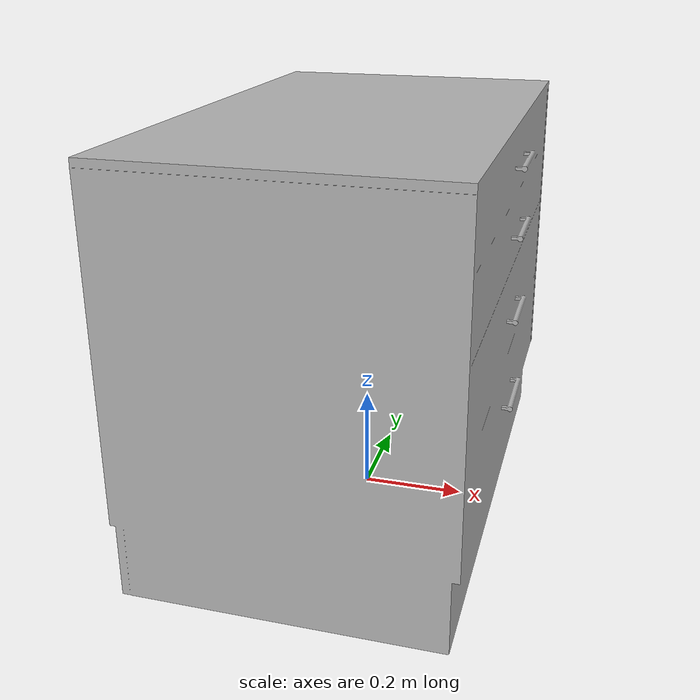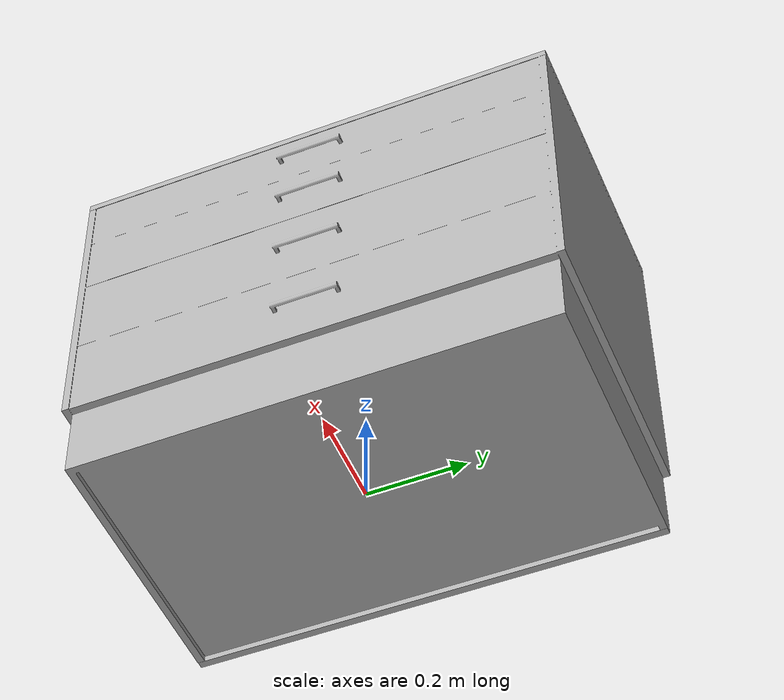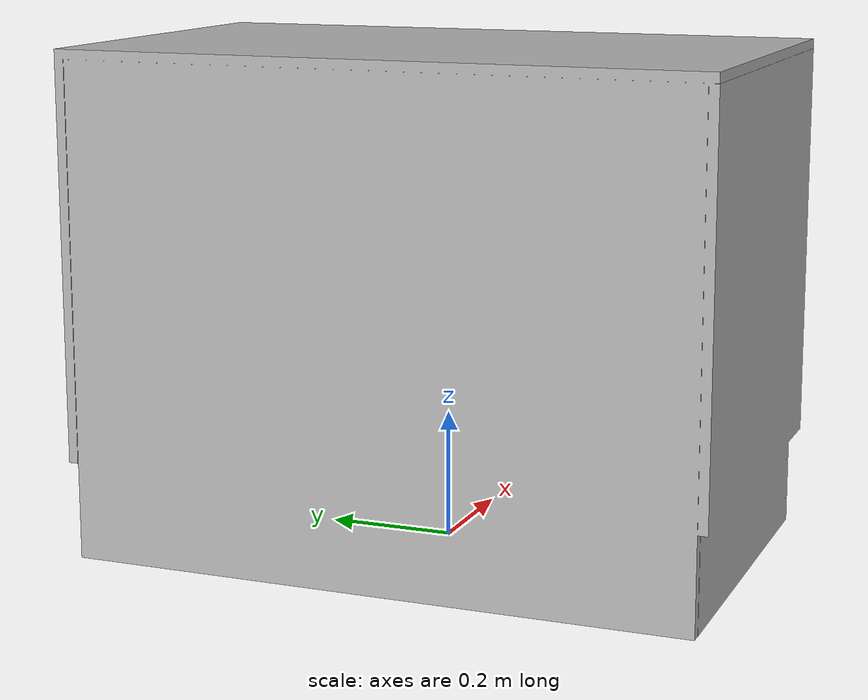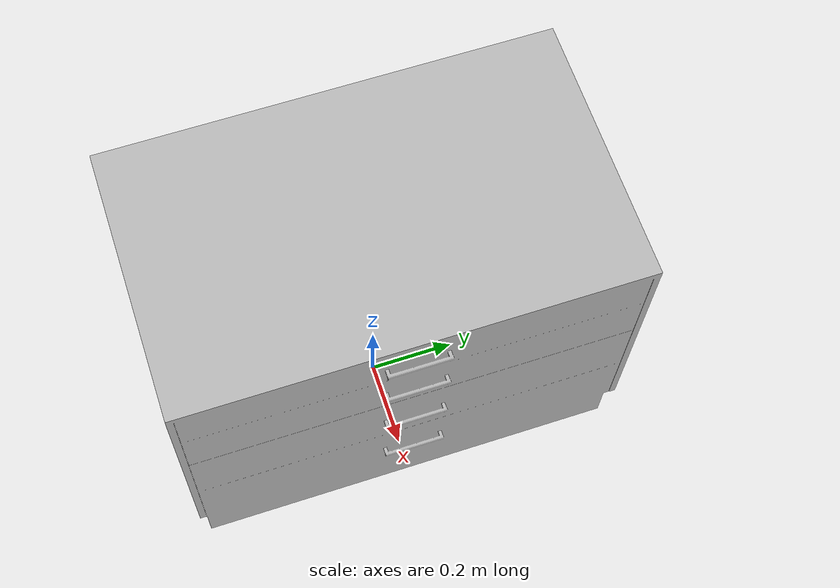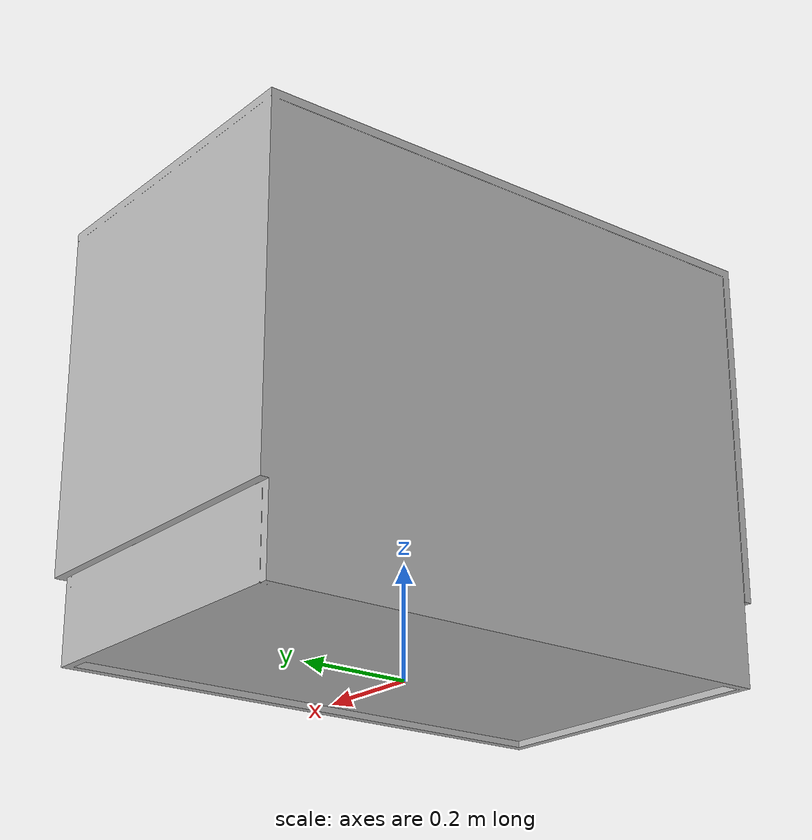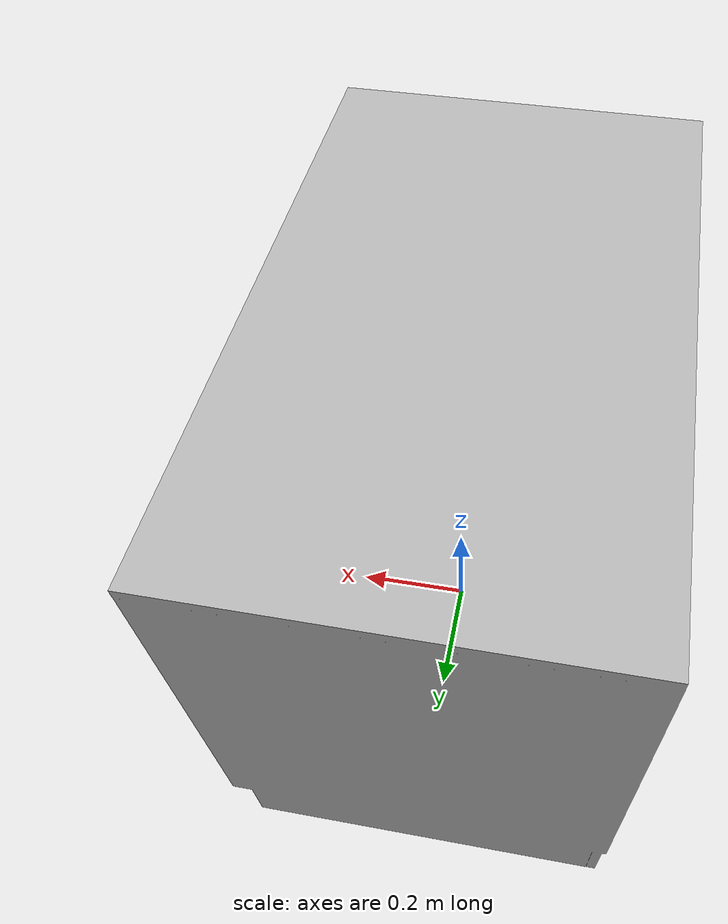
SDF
<?xml version='1.0'?>
<sdf version='1.4'>
  <model name='407'>
    <pose>0 0 0 0 0 0</pose>
    <static>true</static>
    <link name='link'>
      <collision name='collision'>
        <pose>0 0 0 0 0 0</pose>
        <geometry>
          <box>
            <size>0.620691 1.00007 2</size>
          </box>
        </geometry>
      </collision>
      <visual name='visual'>
        <pose>0 0 0 0 0 0</pose>
        <geometry>
          <mesh><uri>model://407/407.dae</uri></mesh>
        </geometry>
      </visual>
    </link>
  </model>
</sdf>
